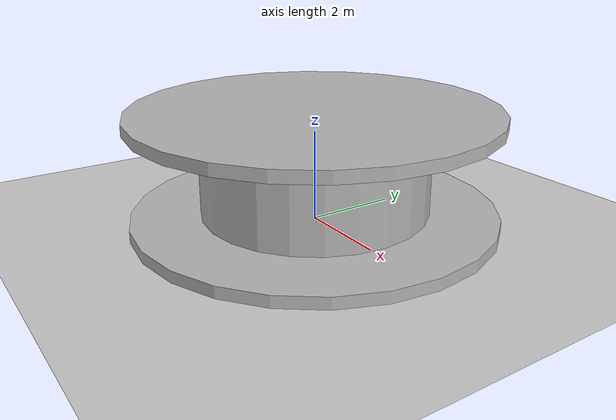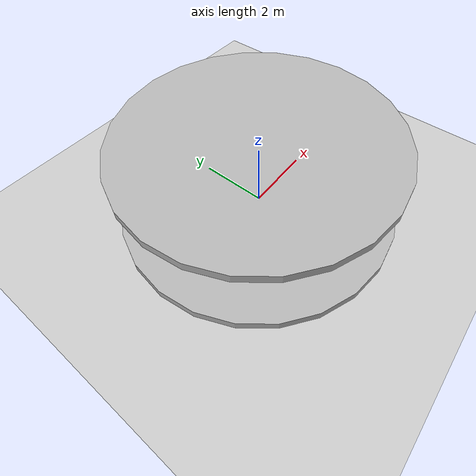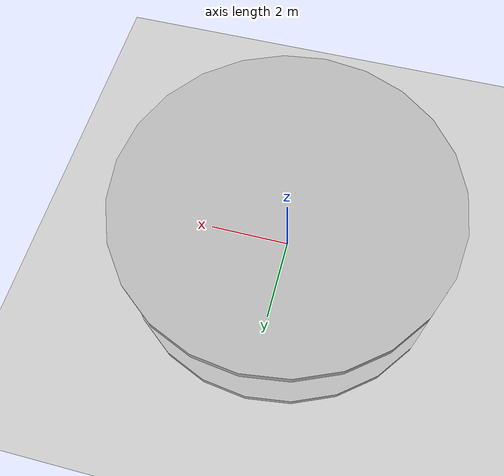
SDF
<?xml version="1.0" ?>
<sdf version="1.5">
  <world name="default">
    <!-- A global light source -->
    <!-- A ground plane -->

    <include>
      <uri>model://ground_plane</uri>
    </include>
    <physics type='ode'>
  <max_step_size>0.001</max_step_size>
    <real_time_update_rate>500</real_time_update_rate>
    <gravity>0 0 -9.8</gravity>
  </physics>

<model name="my_mesh">
  <pose>0 0 .125 0 0 0</pose>
    <static>true</static>

    <link name="robot_link1">
      <collision name="body_collision1">
        <geometry>
          <cylinder>
              <radius> 4</radius>
              <length>.25</length>
            </cylinder>
        </geometry>
      </collision>
      <visual name="body_visual1">
        <geometry>
          <cylinder>
              <radius> 4</radius>
              <length>.25</length>
            </cylinder>
        </geometry>
        <material>
          <script>
            <uri>
              model://meshes//example_model/materials/scripts/repeated1.material
            </uri>
            <name> RepeatedTexture1 </name>
          </script>
        </material>
      </visual>
    </link>
  </model>

  <model name="Color Tutorial Modl">
    <static>true</static>
    <pose>0 0 1.25 0 0 0</pose>
    <link name="robot_link">
      <collision name="body_collision">
        <geometry>
          <cylinder>
              <radius> 2.5</radius>
              <length>2</length>
            </cylinder>
        </geometry>
      </collision>
      <visual name="body_visual">
        <geometry>
          <cylinder>
              <radius> 2.5</radius>
              <length>2</length>
            </cylinder>
        </geometry>
        <material>
          <script>
            <uri>
              model://meshes//example_model/materials/scripts/repeated2.material
            </uri>
            <name> RepeatedTexture2 </name>
          </script>
        </material>
      </visual>
    </link>
  </model>

<model name="my_mesh2">
  <pose>0 0 2.375 0 0 0</pose>
    <static>true</static>

    <link name="robot_link1">
      <collision name="body_collision1">
        <geometry>
          <cylinder>
              <radius> 4</radius>
              <length>.25</length>
            </cylinder>
        </geometry>
      </collision>
      <visual name="body_visual1">
        <geometry>
          <cylinder>
              <radius> 4</radius>
              <length>.25</length>
            </cylinder>
        </geometry>
        <material>
          <script>
            <uri>
              model://meshes//example_model/materials/scripts/repeated4.material
            </uri>
            <name> RepeatedTexture4 </name>
          </script>
        </material>
      </visual>
    </link>
  </model>

  </world>
</sdf>
